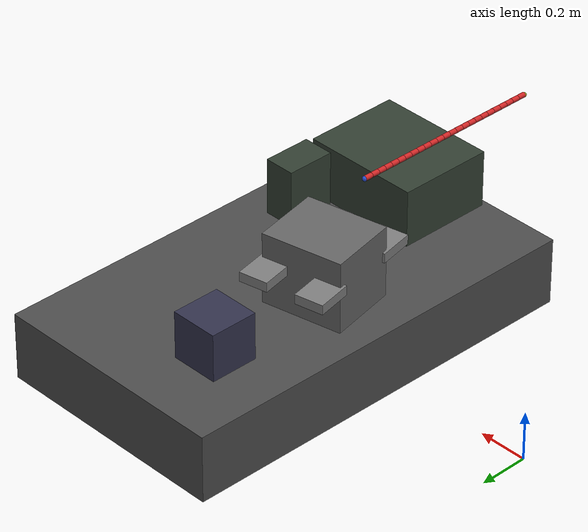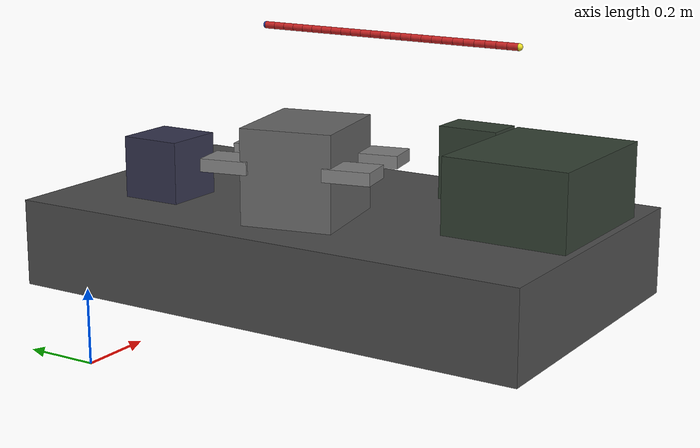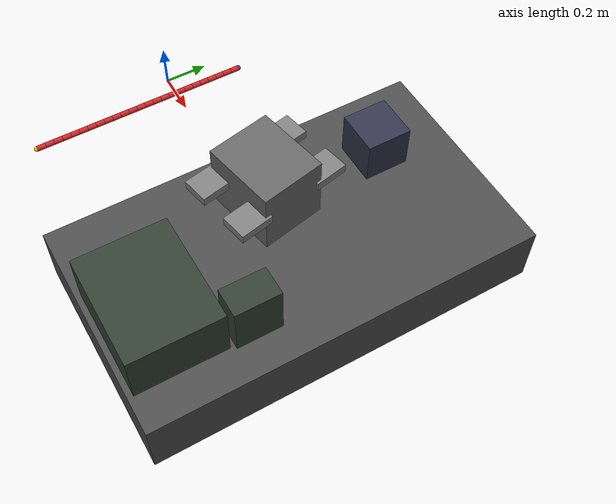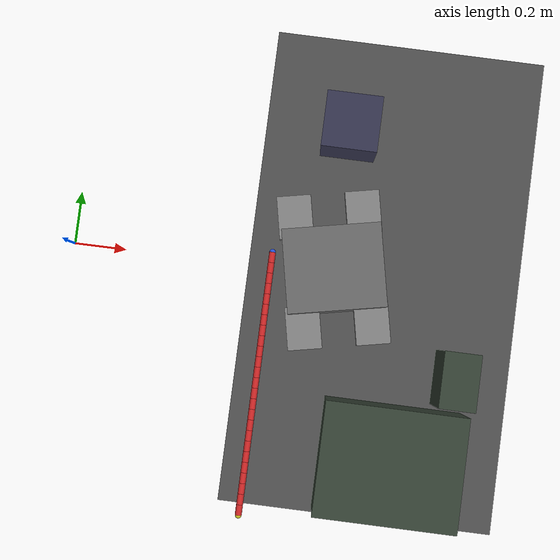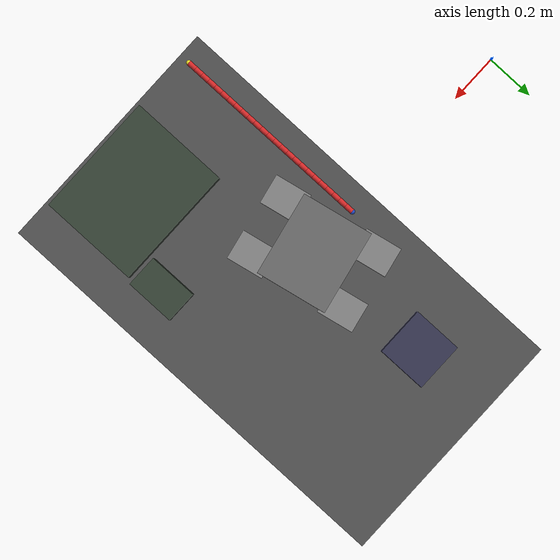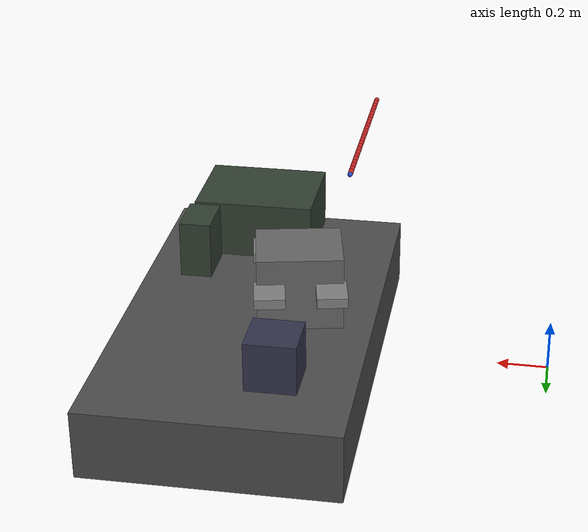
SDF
<sdf version="1.4">
 <world name="default">
  <scene>
   <grid>false</grid>
   <origin_visual>false</origin_visual>
   <sky><clouds><speed>12</speed></clouds></sky>
  </scene>
  <physics name="ode" type="ode">
   <max_step_size>0.01</max_step_size>
   <real_time_factor>1</real_time_factor>
   <real_time_update_rate>0</real_time_update_rate>
   <ode>
    <solver>
     <island_threads>2</island_threads>
     <type>quick</type>
     <iters>100</iters>
     <sor>1.0</sor>
     <use_dynamic_moi_rescaling>false</use_dynamic_moi_rescaling>
    </solver>
    <constraints><erp>0.2</erp></constraints>
   </ode>
  </physics>
  <plugin name="arm_gazebo_ros" filename="libarm_gazebo_ros_plugin.so"/>
  <plugin name="gazebo_ros_tf_plugin" filename="libgazebo_ros_tf_plugin.so"/>
  <plugin name="ros_link_attacher_plugin" filename="libgazebo_ros_link_attacher.so"/>
  <plugin name="position_3d_plugin" filename="libposition_3d_plugin.so"/>
  <plugin name="collision_map_plugin" filename="libcollision_map_plugin.so"/>
  <include><uri>model://sun</uri></include>
  <include><uri>model://car_platform</uri><pose>1.19 0 -0.113 0 0 0</pose></include>
  <include><uri>model://car_engine2</uri><pose>1.0 0 0.165 0 0 -1.37</pose></include>
  <include><uri>model://car_tube_and_tank</uri><pose>1.48 -0.33 0.065 0 0 -1.5707</pose></include>
  <include><uri>model://car_alternator</uri><pose>1.0 0.53 0.160 0 0 -1.5707</pose></include>
  <include><uri>model://rope_3d</uri><pose>0.8 0 0.78 0 0 -1.5707</pose></include>
 </world>
</sdf>

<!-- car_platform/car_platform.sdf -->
<sdf version="1.6">
    <model name="car_platform">
        <allow_auto_disable>true</allow_auto_disable>
        <link name="link">
            <kinematic>true</kinematic>
            <pose>0 0 0.14 0 0 0 0</pose>
            <visual name="visual">
                <geometry>
                    <box>
                        <size>1 1.75 0.28</size>
                    </box>
                </geometry>
                <material>
                    <ambient>0.3 0.3 0.3 1.0</ambient>
                    <diffuse>0.3 0.3 0.3 1.0</diffuse>
                </material>
            </visual>
            <collision name="box_collision">
                <geometry>
                    <box>
                        <size>1 1.75 0.28</size>
                    </box>
                </geometry>
            </collision>
        </link>
    </model>
</sdf>

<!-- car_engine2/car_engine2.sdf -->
<sdf version="1.6">
    <model name="car_engine2">
        <allow_auto_disable>true</allow_auto_disable>
        <link name="body">
            <kinematic>true</kinematic>
            <pose>0 0 0.15 0 0 0 0</pose>
            <visual name="visual">
                <geometry>
                    <box>
                        <size>0.29 0.34 0.30</size>
                    </box>
                </geometry>
                <material>
                    <ambient>0.4 0.4 0.4 1.0</ambient>
                    <diffuse>0.4 0.4 0.4 1.0</diffuse>
                </material>
            </visual>
            <collision name="collision">
                <geometry>
                    <box>
                        <size>0.29 0.34 0.30</size>
                    </box>
                </geometry>
            </collision>
        </link>
        <link name="lift_tab1">
            <kinematic>true</kinematic>
            <pose>0.195 0.12 0.18 0 0 0 0</pose>
            <visual name="visual">
                <geometry>
                    <box>
                        <size>0.15 0.12 0.04</size>
                    </box>
                </geometry>
                <material>
                    <ambient>0.5 0.5 0.5 1.0</ambient>
                    <diffuse>0.5 0.5 0.5 1.0</diffuse>
                </material>
            </visual>
            <collision name="collision">
                <geometry>
                    <box>
                        <size>0.15 0.12 0.04</size>
                    </box>
                </geometry>
            </collision>
        </link>
        <link name="lift_tab2">
            <kinematic>true</kinematic>
            <pose>0.195 -0.12 0.18 0 0 0 0</pose>
            <visual name="visual">
                <geometry>
                    <box>
                        <size>0.15 0.12 0.04</size>
                    </box>
                </geometry>
                <material>
                    <ambient>0.5 0.5 0.5 1.0</ambient>
                    <diffuse>0.5 0.5 0.5 1.0</diffuse>
                </material>
            </visual>
            <collision name="collision">
                <geometry>
                    <box>
                        <size>0.15 0.12 0.04</size>
                    </box>
                </geometry>
            </collision>
        </link>
        <link name="lift_tab3">
            <kinematic>true</kinematic>
            <pose>-0.195 0.12 0.18 0 0 0 0</pose>
            <visual name="visual">
                <geometry>
                    <box>
                        <size>0.15 0.12 0.04</size>
                    </box>
                </geometry>
                <material>
                    <ambient>0.5 0.5 0.5 1.0</ambient>
                    <diffuse>0.5 0.5 0.5 1.0</diffuse>
                </material>
            </visual>
            <collision name="collision">
                <geometry>
                    <box>
                        <size>0.15 0.12 0.04</size>
                    </box>
                </geometry>
            </collision>
        </link>
        <link name="lift_tab4">
            <kinematic>true</kinematic>
            <pose>-0.195 -0.12 0.18 0 0 0 0</pose>
            <visual name="visual">
                <geometry>
                    <box>
                        <size>0.15 0.12 0.04</size>
                    </box>
                </geometry>
                <material>
                    <ambient>0.5 0.5 0.5 1.0</ambient>
                    <diffuse>0.5 0.5 0.5 1.0</diffuse>
                </material>
            </visual>
            <collision name="collision">
                <geometry>
                    <box>
                        <size>0.15 0.12 0.04</size>
                    </box>
                </geometry>
            </collision>
        </link>
    </model>
</sdf>

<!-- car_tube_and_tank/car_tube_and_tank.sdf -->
<sdf version="1.6">
    <model name="car_tube_and_tank">
        <allow_auto_disable>true</allow_auto_disable>
        <link name="box">
            <kinematic>true</kinematic>
            <pose>0.32 -0.2 0.17 0 0 0 0</pose>
            <visual name="visual">
                <geometry>
                    <box>
                        <size>0.40 0.5 0.34</size>
                    </box>
                </geometry>
                <material>
                    <ambient>0.2 0.2 0.25 1.0</ambient>
                    <diffuse>0.2 0.25 0.2 1.0</diffuse>
                </material>
            </visual>
            <collision name="collision">
                <geometry>
                    <box>
                        <size>0.40 0.5 0.34</size>
                    </box>
                </geometry>
            </collision>
        </link>
        <link name="tube">
            <kinematic>true</kinematic>
            <pose>0 0 0.17 0 0 0 0</pose>
            <visual name="visual">
                <geometry>
                    <box>
                        <size>0.2 0.13 0.34</size>
                    </box>
                </geometry>
                <material>
                    <ambient>0.2 0.25 0.2 1.0</ambient>
                    <diffuse>0.2 0.25 0.2 1.0</diffuse>
                </material>
            </visual>
            <collision name="collision">
                <geometry>
                    <box>
                        <size>0.2 0.18 0.34</size>
                    </box>
                </geometry>
            </collision>
        </link>
    </model>
</sdf>

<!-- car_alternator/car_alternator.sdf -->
<sdf version="1.6">
    <model name="car_alternator">
        <allow_auto_disable>true</allow_auto_disable>
        <link name="link_1">
            <kinematic>true</kinematic>
            <pose>0 0 0.105 0 0 0 0</pose>
            <visual name="visual">
                <geometry>
                    <box>
                        <size>0.20 0.20 0.20</size>
                    </box>
                </geometry>
                <material>
                    <ambient>0.2 0.2 0.3 1.0</ambient>
                    <diffuse>0.2 0.2 0.3 1.0</diffuse>
                </material>
            </visual>
            <collision name="collision">
                <geometry>
                    <box>
                        <size>0.20 0.20 0.20</size>
                    </box>
                </geometry>
            </collision>
        </link>
    </model>
</sdf>
